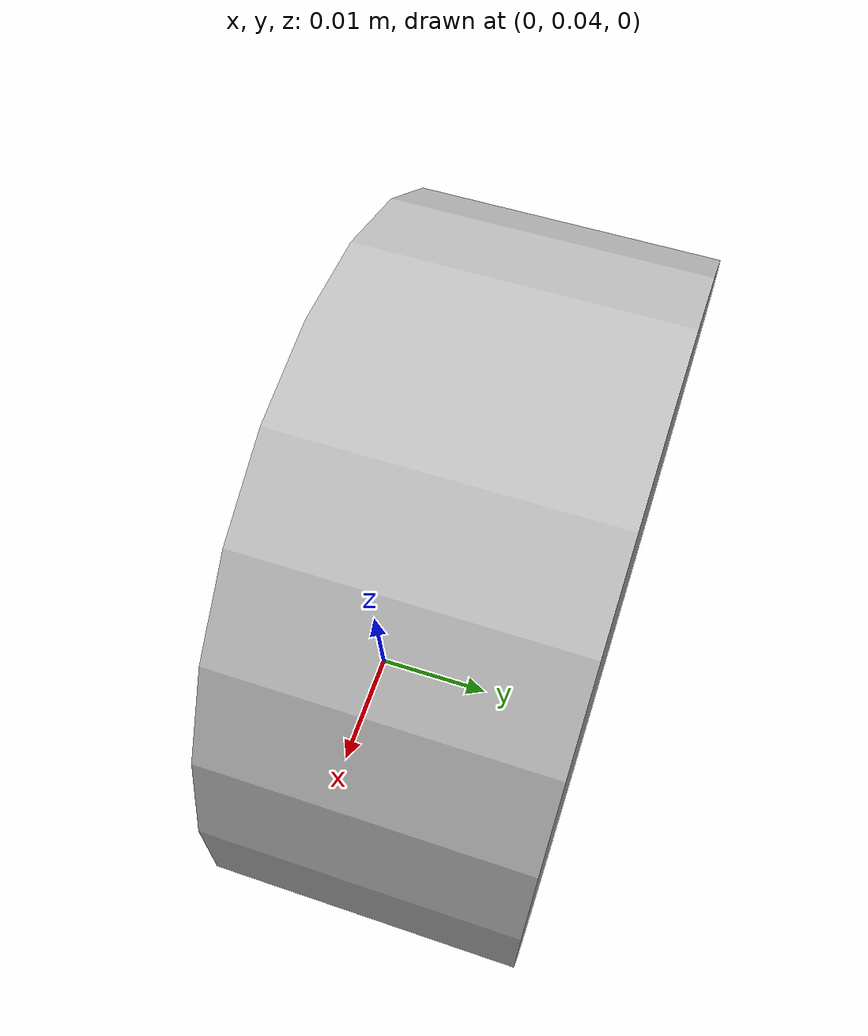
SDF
<?xml version='1.0'?>
<sdf version="1.4">
  <model name="wheel">
    <pose>0 0.05 0.025 1.57079632679 0 0</pose>
      <link name="base">
        <!-- Offset the base by half the lenght of the cylinder -->
        <pose>0 0 0 0 0 0</pose>
        <inertial>
          <mass>1.2</mass>
          <inertia>
            <ixx>0.001087473</ixx>
            <iyy>0.001087473</iyy>
            <izz>0.001092437</izz>
            <ixy>0</ixy>
            <ixz>0</ixz>
            <iyz>0</iyz>
          </inertia>
        </inertial>
        <collision name="base_collision">
          <geometry>
            <cylinder>
              <!-- Radius and length provided by Velodyne -->
              <radius>.025</radius>
              <length>.02</length>
            </cylinder>
          </geometry>
        </collision>

        <!-- The visual is mostly a copy of the collision -->
        <visual name="base_visual">
          <geometry>
            <cylinder>
              <radius>.025</radius>
              <length>.02</length>
            </cylinder>
          </geometry>
        </visual>
    </link>

    <joint type="revolute" name="joint">

        <!-- Position the joint at the bottom of the top link -->
        <pose>0 0 0 0 0 0</pose>

        <!-- Use the base link as the parent of the joint -->
        <parent>base</parent>

        <!-- Use the top link as the child of the joint -->
        <child>top</child>

        <!-- The axis defines the joint's degree of freedom -->
        <axis>

          <!-- Revolve around the z-axis -->
          <xyz>0 0 1</xyz>

          <!-- Limit refers to the range of motion of the joint -->
          <limit>

            <!-- Use a very large number to indicate a continuous revolution -->
            <lower>-10000000000000000</lower>
            <upper>10000000000000000</upper>
          </limit>
        </axis>
      </joint>
  </model>
</sdf>
